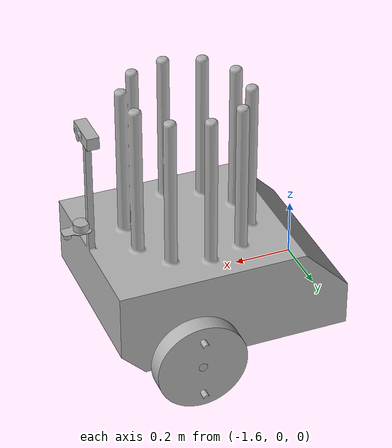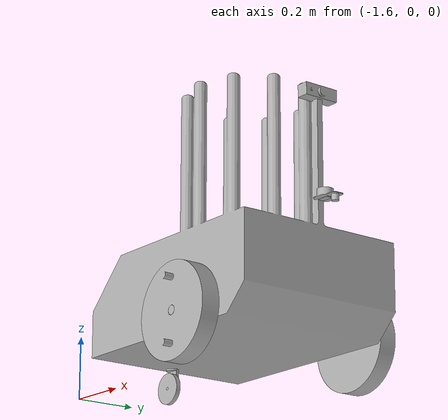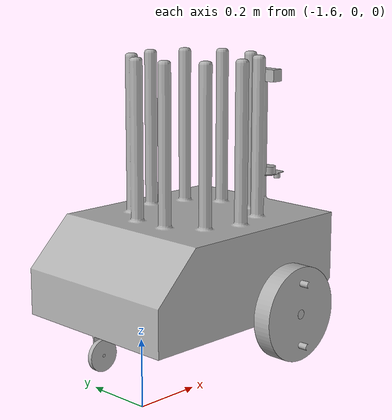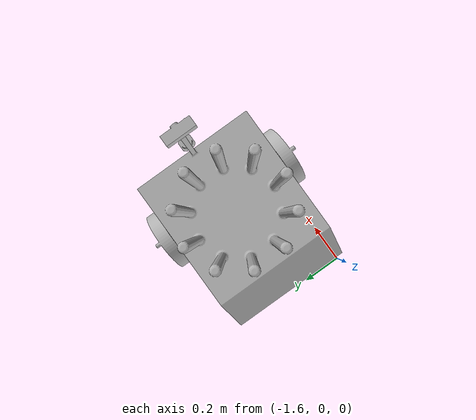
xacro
<?xml version="1.0" ?>
<robot name="uvc" xmlns:xacro="http://www.ros.org/wiki/xacro">

<xacro:include filename="$(find uvc_description)/urdf/materials.xacro" />
<xacro:include filename="$(find uvc_description)/urdf/uvc.trans" />
<xacro:include filename="$(find uvc_description)/urdf/uvc.gazebo" />

<gazebo>
<plugin filename="libgazebo_ros_diff_drive.so" name="differential_drive_controller">
<legacyMode>false</legacyMode>
<alwaysOn>true</alwaysOn>
<updateRate>20</updateRate>
<leftJoint>Rev2</leftJoint>
<rightJoint>Rev1</rightJoint>
<wheelSeparation>0.64</wheelSeparation>
<wheelDiameter>0.3</wheelDiameter>
<torque>0.1</torque>
<commandTopic>cmd_vel</commandTopic>
<odometryTopic>odom</odometryTopic>
<odometryFrame>odom</odometryFrame>
<robotBaseFrame>base_link</robotBaseFrame>
<publishWheelTF>true</publishWheelTF>
<publishWheelJointState>true</publishWheelJointState>
</plugin>
</gazebo>

<link name="base_link">
  <inertial>
    <origin rpy="0 0 0" xyz="0 0 0"/>
    <mass value="50"/>
    <inertia ixx="1" ixy="1" ixz="1" iyy="0.1" iyz="0.1" izz="0.1"/>
  </inertial>
  <visual>
    <origin rpy="0 0 0" xyz="0 0 0"/>
    <geometry>
      <mesh filename="package://uvc_description/meshes/base_link.stl" scale="0.001 0.001 0.001"/>
    </geometry>
    <material name="silver"/>
  </visual>
  <collision>
    <origin rpy="0 0 0" xyz="0 0 0"/>
    <geometry>
      <mesh filename="package://uvc_description/meshes/base_link.stl" scale="0.001 0.001 0.001"/>
    </geometry>
  </collision>
</link>

<link name="lwheel_1">
  <inertial>
    <origin rpy="0 0 0" xyz="8.713801102899765e-08 -0.029798882681564276 -4.326744847127362e-07"/>
    <mass value="2.328108651869254"/>
    <inertia ixx="0.013989" ixy="0.0" ixz="0.0" iyy="0.026439" iyz="-0.0" izz="0.013885"/>
  </inertial>
  <visual>
    <origin rpy="0 0 0" xyz="1.006345 -0.66 -0.150564"/>
    <geometry>
      <mesh filename="package://uvc_description/meshes/lwheel_1.stl" scale="0.001 0.001 0.001"/>
    </geometry>
    <material name="silver"/>
  </visual>
  <collision>
    <origin rpy="0 0 0" xyz="1.006345 -0.66 -0.150564"/>
    <geometry>
      <mesh filename="package://uvc_description/meshes/lwheel_1.stl" scale="0.001 0.001 0.001"/>
    </geometry>
  </collision>
</link>

<link name="rwheel_1">
  <inertial>
    <origin rpy="0 0 0" xyz="8.713802057691566e-08 0.02979888268156424 -4.326745161875589e-07"/>
    <mass value="2.3281086518692535"/>
    <inertia ixx="0.013989" ixy="0.0" ixz="0.0" iyy="0.026439" iyz="-0.0" izz="0.013885"/>
  </inertial>
  <visual>
    <origin rpy="0 0 0" xyz="1.006345 0.08 -0.150564"/>
    <geometry>
      <mesh filename="package://uvc_description/meshes/rwheel_1.stl" scale="0.001 0.001 0.001"/>
    </geometry>
    <material name="silver"/>
  </visual>
  <collision>
    <origin rpy="0 0 0" xyz="1.006345 0.08 -0.150564"/>
    <geometry>
      <mesh filename="package://uvc_description/meshes/rwheel_1.stl" scale="0.001 0.001 0.001"/>
    </geometry>
  </collision>
</link>

<link name="cwheel_1">
  <inertial>
    <origin rpy="0 0 0" xyz="8.713801058490844e-08 0.007500000000000007 -4.3267445310607444e-07"/>
    <mass value="0.06438065825001554"/>
    <inertia ixx="4.2e-05" ixy="0.0" ixz="-0.0" iyy="8.1e-05" iyz="0.0" izz="4.2e-05"/>
  </inertial>
  <visual>
    <origin rpy="0 0 0" xyz="1.506345 -0.27 -0.055564"/>
    <geometry>
      <mesh filename="package://uvc_description/meshes/cwheel_1.stl" scale="0.001 0.001 0.001"/>
    </geometry>
    <material name="silver"/>
  </visual>
  <collision>
    <origin rpy="0 0 0" xyz="1.506345 -0.27 -0.055564"/>
    <geometry>
      <mesh filename="package://uvc_description/meshes/cwheel_1.stl" scale="0.001 0.001 0.001"/>
    </geometry>
  </collision>
</link>

<link name="lidar_1">
  <inertial>
    <origin rpy="0 0 0" xyz="0.007314013916279727 1.5066903875038395e-05 0.009627045255731104"/>
    <mass value="0.036733589579973774"/>
    <inertia ixx="1e-05" ixy="-0.0" ixz="5e-06" iyy="2e-05" iyz="0.0" izz="2.1e-05"/>
  </inertial>
  <visual>
    <origin rpy="0 0 0" xyz="0.746345 -0.29 -0.500564"/>
    <geometry>
      <mesh filename="package://uvc_description/meshes/lidar_1.stl" scale="0.001 0.001 0.001"/>
    </geometry>
    <material name="silver"/>
  </visual>
  <collision>
    <origin rpy="0 0 0" xyz="0.746345 -0.29 -0.500564"/>
    <geometry>
      <mesh filename="package://uvc_description/meshes/lidar_1.stl" scale="0.001 0.001 0.001"/>
    </geometry>
  </collision>
</link>

<link name="camera_1">
  <inertial>
    <origin rpy="0 0 0" xyz="0.000930344447747089 -7.875194167777932e-05 0.019999567325546974"/>
    <mass value="0.11010262796885603"/>
    <inertia ixx="0.000142" ixy="0.0" ixz="0.0" iyy="3.1e-05" iyz="0.0" izz="0.000144"/>
  </inertial>
  <visual>
    <origin rpy="0 0 0" xyz="0.776345 -0.29 -0.820564"/>
    <geometry>
      <mesh filename="package://uvc_description/meshes/camera_1.stl" scale="0.001 0.001 0.001"/>
    </geometry>
    <material name="silver"/>
  </visual>
  <collision>
    <origin rpy="0 0 0" xyz="0.776345 -0.29 -0.820564"/>
    <geometry>
      <mesh filename="package://uvc_description/meshes/camera_1.stl" scale="0.001 0.001 0.001"/>
    </geometry>
  </collision>
</link>

<joint name="Rev1" type="continuous">
  <origin rpy="0 0 0" xyz="-1.006345 0.66 0.150564"/>
  <parent link="base_link"/>
  <child link="lwheel_1"/>
  <axis xyz="0.0 1.0 0.0"/>
</joint>

<joint name="Rev2" type="continuous">
  <origin rpy="0 0 0" xyz="-1.006345 -0.08 0.150564"/>
  <parent link="base_link"/>
  <child link="rwheel_1"/>
  <axis xyz="0.0 -1.0 0.0"/>
</joint>

<joint name="Rev3" type="continuous">
  <origin rpy="0 0 0" xyz="-1.506345 0.27 0.055564"/>
  <parent link="base_link"/>
  <child link="cwheel_1"/>
  <axis xyz="0.0 -1.0 0.0"/>
</joint>

<joint name="Rigid5" type="fixed">
  <origin rpy="0 0 0" xyz="-0.746345 0.29 0.500564"/>
  <parent link="base_link"/>
  <child link="lidar_1"/>
</joint>

<joint name="Rigid6" type="fixed">
  <origin rpy="0 0 0" xyz="-0.776345 0.29 0.820564"/>
  <parent link="base_link"/>
  <child link="camera_1"/>
</joint>

</robot>

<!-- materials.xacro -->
<robot name="uvc" xmlns:xacro="http://www.ros.org/wiki/xacro" >

<material name="silver">
  <color rgba="0.700 0.700 0.700 1.000"/>
</material>

</robot>

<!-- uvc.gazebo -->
<robot name="uvc" xmlns:xacro="http://www.ros.org/wiki/xacro" >

<xacro:property name="body_color" value="Gazebo/Silver" />

<gazebo>
  <plugin filename="libgazebo_ros_control.so" name="control"/>
</gazebo>
<gazebo reference="base_link">
  <material>${body_color}</material>
  <mu1>0.2</mu1>
  <mu2>0.2</mu2>
  <selfCollide>true</selfCollide>
  <gravity>true</gravity>
</gazebo>

<gazebo reference="lwheel_1">
  <material>${body_color}</material>
  <mu1>0.2</mu1>
  <mu2>0.2</mu2>
  <selfCollide>true</selfCollide>
</gazebo>

<gazebo reference="rwheel_1">
  <material>${body_color}</material>
  <mu1>0.2</mu1>
  <mu2>0.2</mu2>
  <selfCollide>true</selfCollide>
</gazebo>

<gazebo reference="cwheel_1">
  <material>${body_color}</material>
  <mu1>0.2</mu1>
  <mu2>0.2</mu2>
  <selfCollide>true</selfCollide>
</gazebo>

<gazebo reference="lidar_1">
  <material>${body_color}</material>
  <mu1>0.2</mu1>
  <mu2>0.2</mu2>
  <selfCollide>true</selfCollide>
</gazebo>

<gazebo reference="camera_1">
  <material>${body_color}</material>
  <mu1>0.2</mu1>
  <mu2>0.2</mu2>
  <selfCollide>true</selfCollide>
</gazebo>

</robot>
